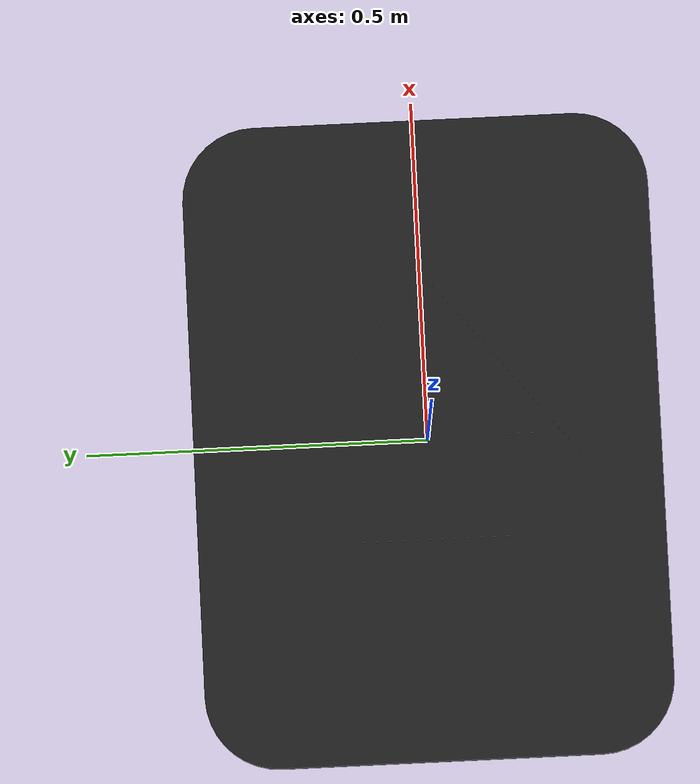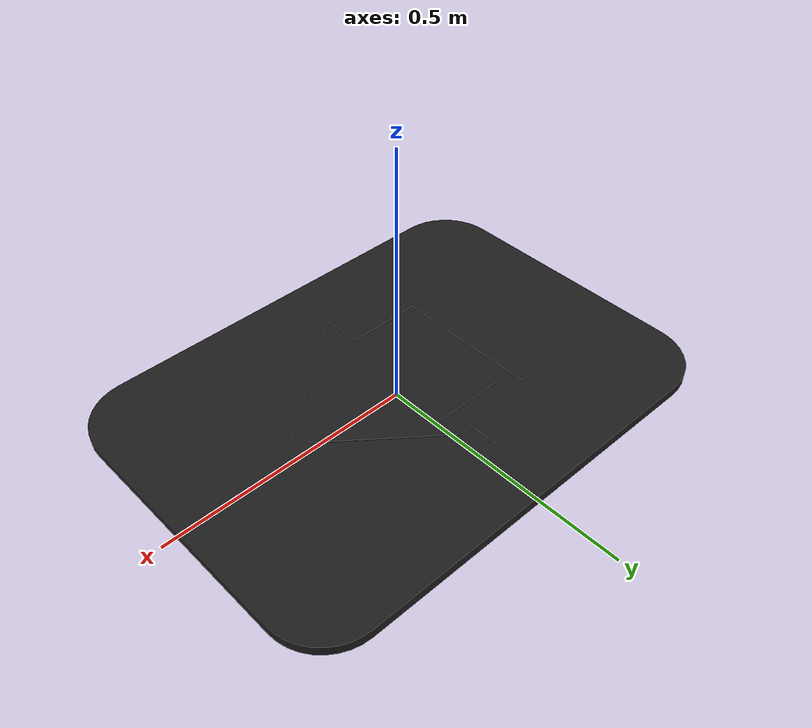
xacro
<?xml version="1.0" ?>
<robot name="agvlidar_robot" xmlns:xacro="http://ros.org/wiki/xacro">
  <xacro:include filename="$(find agvlidar_description)/urdf/common_properties.xacro"/>

  <link name="base_footprint">
    <visual>
      <origin xyz="0.0 0.0 0.0" rpy="0 0 0"/>
      <geometry>
        <mesh filename="package://agvlidar_description/meshes/bases/agvlidar_base_footprint.stl" scale="0.001 0.001 0.001"/>
      </geometry>
      <material name="light_black"/>
    </visual>
  </link>
</robot>
